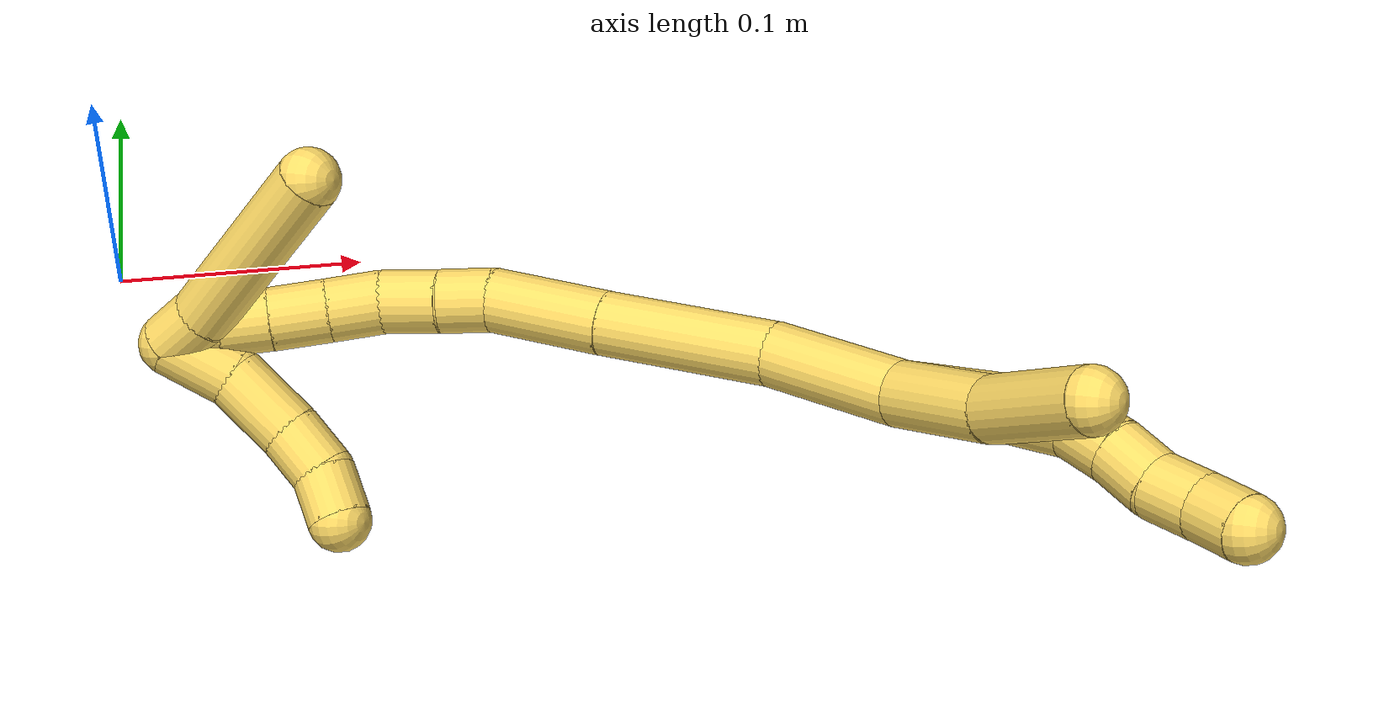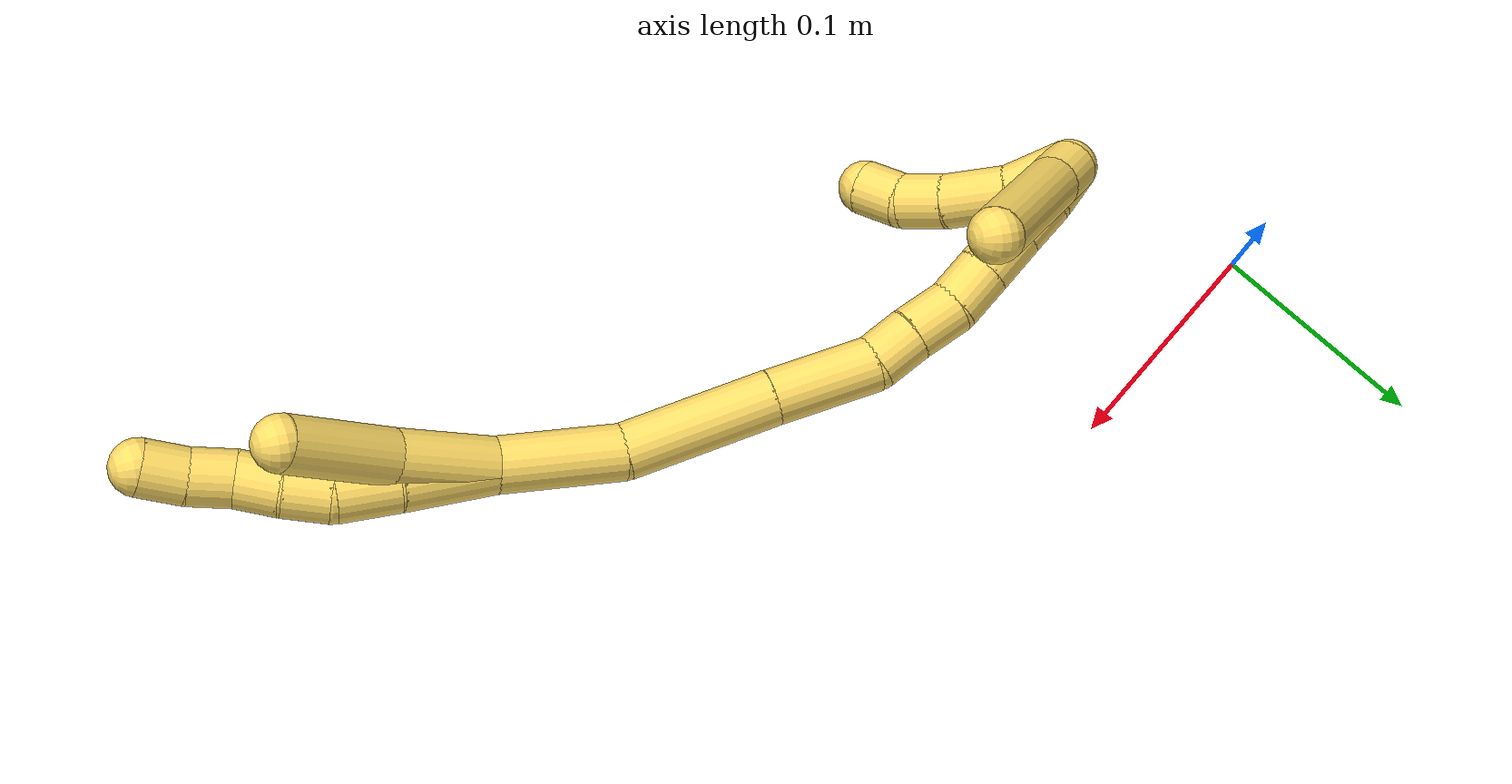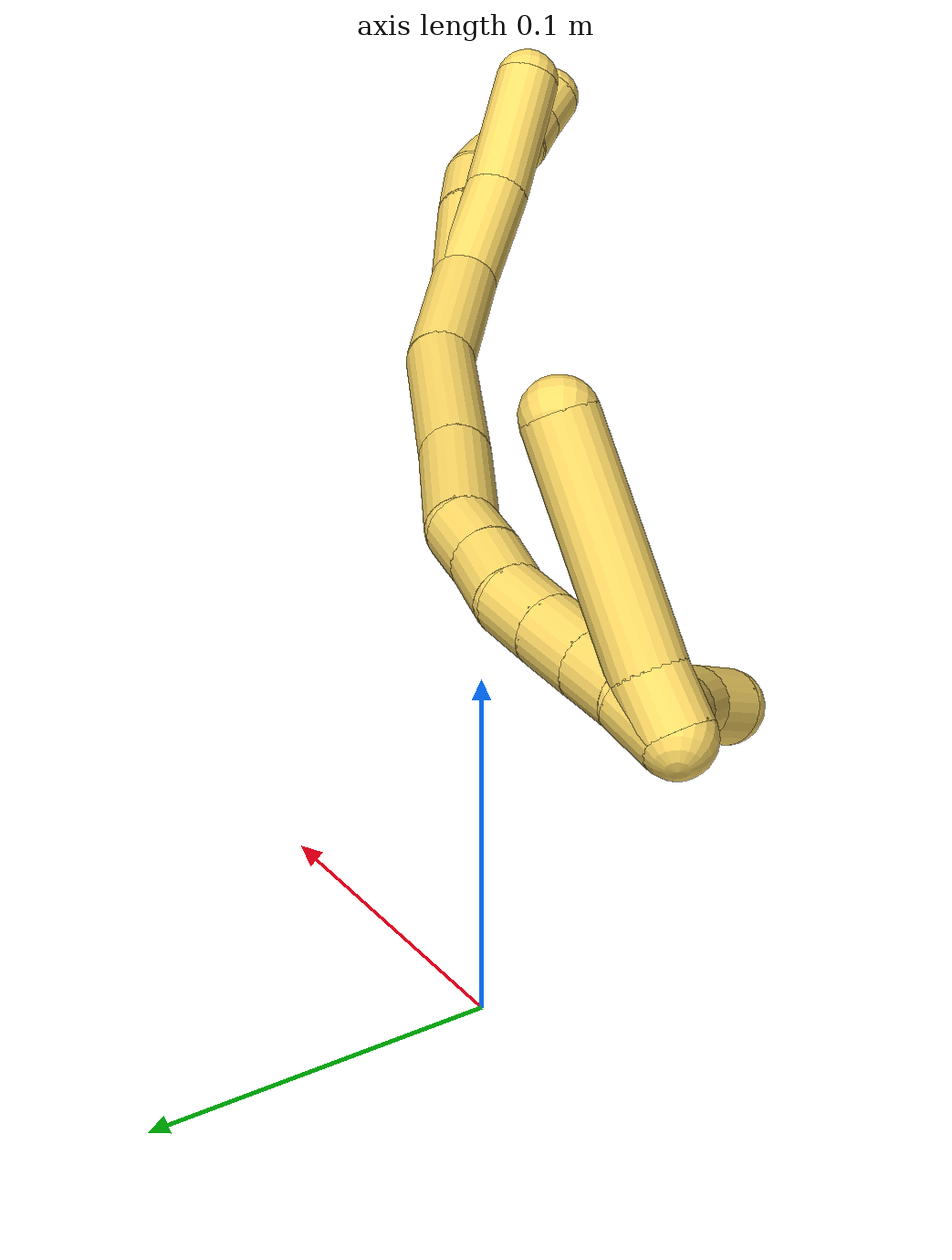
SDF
<sdf version="1.7">
 <world name="default">
  <model name="5">
   <static>0</static>
   <link name="5">
    <collision name="collision-cylinder-e_1_2_8">
     <pose>-0.000929 -0.001029 0.020965 0.049035 -0.044222 -0.001085</pose>
     <geometry><cylinder><radius>0.0125</radius><length>0.042021</length></cylinder></geometry>
     <surface>
      <friction><ode><mu>1.16</mu><mu2>1.16</mu2><slip1>0</slip1><slip2>0</slip2></ode></friction>
      <contact><ode><kp>1e+06</kp><kd>1</kd><max_vel>0</max_vel><min_depth>0.001</min_depth></ode></contact>
     </surface>
    </collision>
    <visual name="visual-cylinder-e_1_2_8">
     <pose>-0.000929 -0.001029 0.020965 0.049035 -0.044222 -0.001085</pose>
     <geometry><cylinder><radius>0.0125</radius><length>0.042021</length></cylinder></geometry>
     <material><ambient>1 0.858824 0.4 1</ambient></material>
    </visual>
    <collision name="collision-cylinder-e_2_8_9">
     <pose>-0.003402 -0.003721 0.055379 0.123021 -0.113488 -0.006997</pose>
     <geometry><cylinder><radius>0.0125</radius><length>0.02728</length></cylinder></geometry>
     <surface>
      <friction><ode><mu>1.16</mu><mu2>1.16</mu2><slip1>0</slip1><slip2>0</slip2></ode></friction>
      <contact><ode><kp>1e+06</kp><kd>1</kd><max_vel>0</max_vel><min_depth>0.001</min_depth></ode></contact>
     </surface>
    </collision>
    <visual name="visual-cylinder-e_2_8_9">
     <pose>-0.003402 -0.003721 0.055379 0.123021 -0.113488 -0.006997</pose>
     <geometry><cylinder><radius>0.0125</radius><length>0.02728</length></cylinder></geometry>
     <material><ambient>1 0.858824 0.4 1</ambient></material>
    </visual>
    <collision name="collision-cylinder-e_3_9_10">
     <pose>-0.009262 -0.006168 0.078114 0.084285 -0.433667 -0.018578</pose>
     <geometry><cylinder><radius>0.0125</radius><length>0.020538</length></cylinder></geometry>
     <surface>
      <friction><ode><mu>1.16</mu><mu2>1.16</mu2><slip1>0</slip1><slip2>0</slip2></ode></friction>
      <contact><ode><kp>1e+06</kp><kd>1</kd><max_vel>0</max_vel><min_depth>0.001</min_depth></ode></contact>
     </surface>
    </collision>
    <visual name="visual-cylinder-e_3_9_10">
     <pose>-0.009262 -0.006168 0.078114 0.084285 -0.433667 -0.018578</pose>
     <geometry><cylinder><radius>0.0125</radius><length>0.020538</length></cylinder></geometry>
     <material><ambient>1 0.858824 0.4 1</ambient></material>
    </visual>
    <collision name="collision-cylinder-e_4_10_11">
     <pose>-0.01881 -0.007998 0.095889 0.122559 -0.548981 -0.034552</pose>
     <geometry><cylinder><radius>0.0125</radius><length>0.020055</length></cylinder></geometry>
     <surface>
      <friction><ode><mu>1.16</mu><mu2>1.16</mu2><slip1>0</slip1><slip2>0</slip2></ode></friction>
      <contact><ode><kp>1e+06</kp><kd>1</kd><max_vel>0</max_vel><min_depth>0.001</min_depth></ode></contact>
     </surface>
    </collision>
    <visual name="visual-cylinder-e_4_10_11">
     <pose>-0.01881 -0.007998 0.095889 0.122559 -0.548981 -0.034552</pose>
     <geometry><cylinder><radius>0.0125</radius><length>0.020055</length></cylinder></geometry>
     <material><ambient>1 0.858824 0.4 1</ambient></material>
    </visual>
    <collision name="collision-cylinder-e_5_11_12">
     <pose>-0.027153 -0.009389 0.113903 0.036238 -0.315538 -0.005766</pose>
     <geometry><cylinder><radius>0.0125</radius><length>0.02005</length></cylinder></geometry>
     <surface>
      <friction><ode><mu>1.16</mu><mu2>1.16</mu2><slip1>0</slip1><slip2>0</slip2></ode></friction>
      <contact><ode><kp>1e+06</kp><kd>1</kd><max_vel>0</max_vel><min_depth>0.001</min_depth></ode></contact>
     </surface>
    </collision>
    <visual name="visual-cylinder-e_5_11_12">
     <pose>-0.027153 -0.009389 0.113903 0.036238 -0.315538 -0.005766</pose>
     <geometry><cylinder><radius>0.0125</radius><length>0.02005</length></cylinder></geometry>
     <material><ambient>1 0.858824 0.4 1</ambient></material>
    </visual>
    <collision name="collision-cylinder-e_6_12_6">
     <pose>-0.033913 -0.00851 0.132687 -0.131469 -0.372354 0.024798</pose>
     <geometry><cylinder><radius>0.0125</radius><length>0.020057</length></cylinder></geometry>
     <surface>
      <friction><ode><mu>1.16</mu><mu2>1.16</mu2><slip1>0</slip1><slip2>0</slip2></ode></friction>
      <contact><ode><kp>1e+06</kp><kd>1</kd><max_vel>0</max_vel><min_depth>0.001</min_depth></ode></contact>
     </surface>
    </collision>
    <visual name="visual-cylinder-e_6_12_6">
     <pose>-0.033913 -0.00851 0.132687 -0.131469 -0.372354 0.024798</pose>
     <geometry><cylinder><radius>0.0125</radius><length>0.020057</length></cylinder></geometry>
     <material><ambient>1 0.858824 0.4 1</ambient></material>
    </visual>
    <collision name="collision-cylinder-e_1_2_13">
     <pose>-0.004006 0.004856 0.022291 -0.214492 -0.173816 0.01876</pose>
     <geometry><cylinder><radius>0.0125</radius><length>0.046326</length></cylinder></geometry>
     <surface>
      <friction><ode><mu>1.16</mu><mu2>1.16</mu2><slip1>0</slip1><slip2>0</slip2></ode></friction>
      <contact><ode><kp>1e+06</kp><kd>1</kd><max_vel>0</max_vel><min_depth>0.001</min_depth></ode></contact>
     </surface>
    </collision>
    <visual name="visual-cylinder-e_1_2_13">
     <pose>-0.004006 0.004856 0.022291 -0.214492 -0.173816 0.01876</pose>
     <geometry><cylinder><radius>0.0125</radius><length>0.046326</length></cylinder></geometry>
     <material><ambient>1 0.858824 0.4 1</ambient></material>
    </visual>
    <collision name="collision-cylinder-e_2_13_5">
     <pose>-0.009744 0.020252 0.069202 -0.40451 -0.064605 0.013252</pose>
     <geometry><cylinder><radius>0.0125</radius><length>0.053674</length></cylinder></geometry>
     <surface>
      <friction><ode><mu>1.16</mu><mu2>1.16</mu2><slip1>0</slip1><slip2>0</slip2></ode></friction>
      <contact><ode><kp>1e+06</kp><kd>1</kd><max_vel>0</max_vel><min_depth>0.001</min_depth></ode></contact>
     </surface>
    </collision>
    <visual name="visual-cylinder-e_2_13_5">
     <pose>-0.009744 0.020252 0.069202 -0.40451 -0.064605 0.013252</pose>
     <geometry><cylinder><radius>0.0125</radius><length>0.053674</length></cylinder></geometry>
     <material><ambient>1 0.858824 0.4 1</ambient></material>
    </visual>
    <collision name="collision-cylinder-e_1_2_14">
     <pose>0.005003 0.003016 -0.027312 -3.0316 0.180085 -2.04645</pose>
     <geometry><cylinder><radius>0.0125</radius><length>0.05586</length></cylinder></geometry>
     <surface>
      <friction><ode><mu>1.16</mu><mu2>1.16</mu2><slip1>0</slip1><slip2>0</slip2></ode></friction>
      <contact><ode><kp>1e+06</kp><kd>1</kd><max_vel>0</max_vel><min_depth>0.001</min_depth></ode></contact>
     </surface>
    </collision>
    <visual name="visual-cylinder-e_1_2_14">
     <pose>0.005003 0.003016 -0.027312 -3.0316 0.180085 -2.04645</pose>
     <geometry><cylinder><radius>0.0125</radius><length>0.05586</length></cylinder></geometry>
     <material><ambient>1 0.858824 0.4 1</ambient></material>
    </visual>
    <collision name="collision-cylinder-e_2_14_15">
     <pose>0.009952 0.015754 -0.08748 -2.85392 -0.001561 0.010775</pose>
     <geometry><cylinder><radius>0.0125</radius><length>0.068528</length></cylinder></geometry>
     <surface>
      <friction><ode><mu>1.16</mu><mu2>1.16</mu2><slip1>0</slip1><slip2>0</slip2></ode></friction>
      <contact><ode><kp>1e+06</kp><kd>1</kd><max_vel>0</max_vel><min_depth>0.001</min_depth></ode></contact>
     </surface>
    </collision>
    <visual name="visual-cylinder-e_2_14_15">
     <pose>0.009952 0.015754 -0.08748 -2.85392 -0.001561 0.010775</pose>
     <geometry><cylinder><radius>0.0125</radius><length>0.068528</length></cylinder></geometry>
     <material><ambient>1 0.858824 0.4 1</ambient></material>
    </visual>
    <collision name="collision-cylinder-e_3_15_16">
     <pose>0.010515 0.032013 -0.143097 -2.86188 0.026045 -0.184495</pose>
     <geometry><cylinder><radius>0.0125</radius><length>0.047378</length></cylinder></geometry>
     <surface>
      <friction><ode><mu>1.16</mu><mu2>1.16</mu2><slip1>0</slip1><slip2>0</slip2></ode></friction>
      <contact><ode><kp>1e+06</kp><kd>1</kd><max_vel>0</max_vel><min_depth>0.001</min_depth></ode></contact>
     </surface>
    </collision>
    <visual name="visual-cylinder-e_3_15_16">
     <pose>0.010515 0.032013 -0.143097 -2.86188 0.026045 -0.184495</pose>
     <geometry><cylinder><radius>0.0125</radius><length>0.047378</length></cylinder></geometry>
     <material><ambient>1 0.858824 0.4 1</ambient></material>
    </visual>
    <collision name="collision-cylinder-e_4_16_17">
     <pose>0.008278 0.042654 -0.174985 -2.71916 -0.277794 1.15555</pose>
     <geometry><cylinder><radius>0.0125</radius><length>0.020814</length></cylinder></geometry>
     <surface>
      <friction><ode><mu>1.16</mu><mu2>1.16</mu2><slip1>0</slip1><slip2>0</slip2></ode></friction>
      <contact><ode><kp>1e+06</kp><kd>1</kd><max_vel>0</max_vel><min_depth>0.001</min_depth></ode></contact>
     </surface>
    </collision>
    <visual name="visual-cylinder-e_4_16_17">
     <pose>0.008278 0.042654 -0.174985 -2.71916 -0.277794 1.15555</pose>
     <geometry><cylinder><radius>0.0125</radius><length>0.020814</length></cylinder></geometry>
     <material><ambient>1 0.858824 0.4 1</ambient></material>
    </visual>
    <collision name="collision-cylinder-e_5_17_18">
     <pose>0.002844 0.050735 -0.194469 -2.77485 -0.228491 1.10814</pose>
     <geometry><cylinder><radius>0.0125</radius><length>0.02278</length></cylinder></geometry>
     <surface>
      <friction><ode><mu>1.16</mu><mu2>1.16</mu2><slip1>0</slip1><slip2>0</slip2></ode></friction>
      <contact><ode><kp>1e+06</kp><kd>1</kd><max_vel>0</max_vel><min_depth>0.001</min_depth></ode></contact>
     </surface>
    </collision>
    <visual name="visual-cylinder-e_5_17_18">
     <pose>0.002844 0.050735 -0.194469 -2.77485 -0.228491 1.10814</pose>
     <geometry><cylinder><radius>0.0125</radius><length>0.02278</length></cylinder></geometry>
     <material><ambient>1 0.858824 0.4 1</ambient></material>
    </visual>
    <collision name="collision-cylinder-e_6_18_19">
     <pose>-0.004319 0.059246 -0.21324 -2.64746 -0.447185 1.46737</pose>
     <geometry><cylinder><radius>0.0125</radius><length>0.021201</length></cylinder></geometry>
     <surface>
      <friction><ode><mu>1.16</mu><mu2>1.16</mu2><slip1>0</slip1><slip2>0</slip2></ode></friction>
      <contact><ode><kp>1e+06</kp><kd>1</kd><max_vel>0</max_vel><min_depth>0.001</min_depth></ode></contact>
     </surface>
    </collision>
    <visual name="visual-cylinder-e_6_18_19">
     <pose>-0.004319 0.059246 -0.21324 -2.64746 -0.447185 1.46737</pose>
     <geometry><cylinder><radius>0.0125</radius><length>0.021201</length></cylinder></geometry>
     <material><ambient>1 0.858824 0.4 1</ambient></material>
    </visual>
    <collision name="collision-cylinder-e_7_19_20">
     <pose>-0.01383 0.068867 -0.230614 -2.62517 -0.446005 1.41897</pose>
     <geometry><cylinder><radius>0.0125</radius><length>0.022841</length></cylinder></geometry>
     <surface>
      <friction><ode><mu>1.16</mu><mu2>1.16</mu2><slip1>0</slip1><slip2>0</slip2></ode></friction>
      <contact><ode><kp>1e+06</kp><kd>1</kd><max_vel>0</max_vel><min_depth>0.001</min_depth></ode></contact>
     </surface>
    </collision>
    <visual name="visual-cylinder-e_7_19_20">
     <pose>-0.01383 0.068867 -0.230614 -2.62517 -0.446005 1.41897</pose>
     <geometry><cylinder><radius>0.0125</radius><length>0.022841</length></cylinder></geometry>
     <material><ambient>1 0.858824 0.4 1</ambient></material>
    </visual>
    <collision name="collision-cylinder-e_8_20_21">
     <pose>-0.022899 0.078616 -0.247544 -2.61235 -0.421736 1.33714</pose>
     <geometry><cylinder><radius>0.0125</radius><length>0.02024</length></cylinder></geometry>
     <surface>
      <friction><ode><mu>1.16</mu><mu2>1.16</mu2><slip1>0</slip1><slip2>0</slip2></ode></friction>
      <contact><ode><kp>1e+06</kp><kd>1</kd><max_vel>0</max_vel><min_depth>0.001</min_depth></ode></contact>
     </surface>
    </collision>
    <visual name="visual-cylinder-e_8_20_21">
     <pose>-0.022899 0.078616 -0.247544 -2.61235 -0.421736 1.33714</pose>
     <geometry><cylinder><radius>0.0125</radius><length>0.02024</length></cylinder></geometry>
     <material><ambient>1 0.858824 0.4 1</ambient></material>
    </visual>
    <collision name="collision-cylinder-e_9_21_1">
     <pose>-0.032715 0.086084 -0.263487 -2.80313 -0.591182 2.11892</pose>
     <geometry><cylinder><radius>0.0125</radius><length>0.020359</length></cylinder></geometry>
     <surface>
      <friction><ode><mu>1.16</mu><mu2>1.16</mu2><slip1>0</slip1><slip2>0</slip2></ode></friction>
      <contact><ode><kp>1e+06</kp><kd>1</kd><max_vel>0</max_vel><min_depth>0.001</min_depth></ode></contact>
     </surface>
    </collision>
    <visual name="visual-cylinder-e_9_21_1">
     <pose>-0.032715 0.086084 -0.263487 -2.80313 -0.591182 2.11892</pose>
     <geometry><cylinder><radius>0.0125</radius><length>0.020359</length></cylinder></geometry>
     <material><ambient>1 0.858824 0.4 1</ambient></material>
    </visual>
    <collision name="collision-cylinder-e_1_1_22">
     <pose>-0.033023 0.091286 -0.263329 -0.286523 0.564396 -0.083598</pose>
     <geometry><cylinder><radius>0.0125</radius><length>0.020063</length></cylinder></geometry>
     <surface>
      <friction><ode><mu>1.16</mu><mu2>1.16</mu2><slip1>0</slip1><slip2>0</slip2></ode></friction>
      <contact><ode><kp>1e+06</kp><kd>1</kd><max_vel>0</max_vel><min_depth>0.001</min_depth></ode></contact>
     </surface>
    </collision>
    <visual name="visual-cylinder-e_1_1_22">
     <pose>-0.033023 0.091286 -0.263329 -0.286523 0.564396 -0.083598</pose>
     <geometry><cylinder><radius>0.0125</radius><length>0.020063</length></cylinder></geometry>
     <material><ambient>1 0.858824 0.4 1</ambient></material>
    </visual>
    <collision name="collision-cylinder-e_2_22_4">
     <pose>-0.006189 0.10959 -0.225474 -0.491407 0.567001 -0.145864</pose>
     <geometry><cylinder><radius>0.0125</radius><length>0.079937</length></cylinder></geometry>
     <surface>
      <friction><ode><mu>1.16</mu><mu2>1.16</mu2><slip1>0</slip1><slip2>0</slip2></ode></friction>
      <contact><ode><kp>1e+06</kp><kd>1</kd><max_vel>0</max_vel><min_depth>0.001</min_depth></ode></contact>
     </surface>
    </collision>
    <visual name="visual-cylinder-e_2_22_4">
     <pose>-0.006189 0.10959 -0.225474 -0.491407 0.567001 -0.145864</pose>
     <geometry><cylinder><radius>0.0125</radius><length>0.079937</length></cylinder></geometry>
     <material><ambient>1 0.858824 0.4 1</ambient></material>
    </visual>
    <collision name="collision-cylinder-e_1_1_23">
     <pose>-0.040662 0.079877 -0.260795 0.701705 -0.161431 -0.059194</pose>
     <geometry><cylinder><radius>0.0125</radius><length>0.028294</length></cylinder></geometry>
     <surface>
      <friction><ode><mu>1.16</mu><mu2>1.16</mu2><slip1>0</slip1><slip2>0</slip2></ode></friction>
      <contact><ode><kp>1e+06</kp><kd>1</kd><max_vel>0</max_vel><min_depth>0.001</min_depth></ode></contact>
     </surface>
    </collision>
    <visual name="visual-cylinder-e_1_1_23">
     <pose>-0.040662 0.079877 -0.260795 0.701705 -0.161431 -0.059194</pose>
     <geometry><cylinder><radius>0.0125</radius><length>0.028294</length></cylinder></geometry>
     <material><ambient>1 0.858824 0.4 1</ambient></material>
    </visual>
    <collision name="collision-cylinder-e_2_23_24">
     <pose>-0.049759 0.06201 -0.239621 0.700051 -0.460834 -0.170856</pose>
     <geometry><cylinder><radius>0.0125</radius><length>0.030687</length></cylinder></geometry>
     <surface>
      <friction><ode><mu>1.16</mu><mu2>1.16</mu2><slip1>0</slip1><slip2>0</slip2></ode></friction>
      <contact><ode><kp>1e+06</kp><kd>1</kd><max_vel>0</max_vel><min_depth>0.001</min_depth></ode></contact>
     </surface>
    </collision>
    <visual name="visual-cylinder-e_2_23_24">
     <pose>-0.049759 0.06201 -0.239621 0.700051 -0.460834 -0.170856</pose>
     <geometry><cylinder><radius>0.0125</radius><length>0.030687</length></cylinder></geometry>
     <material><ambient>1 0.858824 0.4 1</ambient></material>
    </visual>
    <collision name="collision-cylinder-e_3_24_25">
     <pose>-0.062354 0.047992 -0.222048 0.631382 -0.583118 -0.195417</pose>
     <geometry><cylinder><radius>0.0125</radius><length>0.020961</length></cylinder></geometry>
     <surface>
      <friction><ode><mu>1.16</mu><mu2>1.16</mu2><slip1>0</slip1><slip2>0</slip2></ode></friction>
      <contact><ode><kp>1e+06</kp><kd>1</kd><max_vel>0</max_vel><min_depth>0.001</min_depth></ode></contact>
     </surface>
    </collision>
    <visual name="visual-cylinder-e_3_24_25">
     <pose>-0.062354 0.047992 -0.222048 0.631382 -0.583118 -0.195417</pose>
     <geometry><cylinder><radius>0.0125</radius><length>0.020961</length></cylinder></geometry>
     <material><ambient>1 0.858824 0.4 1</ambient></material>
    </visual>
    <collision name="collision-cylinder-e_4_25_3">
     <pose>-0.076123 0.03921 -0.210136 0.640964 -0.923228 -0.327285</pose>
     <geometry><cylinder><radius>0.0125</radius><length>0.020058</length></cylinder></geometry>
     <surface>
      <friction><ode><mu>1.16</mu><mu2>1.16</mu2><slip1>0</slip1><slip2>0</slip2></ode></friction>
      <contact><ode><kp>1e+06</kp><kd>1</kd><max_vel>0</max_vel><min_depth>0.001</min_depth></ode></contact>
     </surface>
    </collision>
    <visual name="visual-cylinder-e_4_25_3">
     <pose>-0.076123 0.03921 -0.210136 0.640964 -0.923228 -0.327285</pose>
     <geometry><cylinder><radius>0.0125</radius><length>0.020058</length></cylinder></geometry>
     <material><ambient>1 0.858824 0.4 1</ambient></material>
    </visual>
    <collision name="collision-sphere-3">
     <pose>-0.084122 0.035593 -0.205287 0 -0 0</pose>
     <geometry><sphere><radius>0.0125</radius></sphere></geometry>
     <surface>
      <friction><ode><mu>1.16</mu><mu2>1.16</mu2><slip1>0</slip1><slip2>0</slip2></ode></friction>
      <contact><ode><kp>1e+06</kp><kd>1</kd><max_vel>0</max_vel><min_depth>0.001</min_depth></ode></contact>
     </surface>
    </collision>
    <visual name="visual-sphere-3">
     <pose>-0.084122 0.035593 -0.205287 0 -0 0</pose>
     <geometry><sphere><radius>0.0125</radius></sphere></geometry>
     <material><ambient>1 0.858824 0.4 1</ambient></material>
    </visual>
    <collision name="collision-sphere-25">
     <pose>-0.068124 0.042828 -0.214986 0 -0 0</pose>
     <geometry><sphere><radius>0.0125</radius></sphere></geometry>
     <surface>
      <friction><ode><mu>1.16</mu><mu2>1.16</mu2><slip1>0</slip1><slip2>0</slip2></ode></friction>
      <contact><ode><kp>1e+06</kp><kd>1</kd><max_vel>0</max_vel><min_depth>0.001</min_depth></ode></contact>
     </surface>
    </collision>
    <visual name="visual-sphere-25">
     <pose>-0.068124 0.042828 -0.214986 0 -0 0</pose>
     <geometry><sphere><radius>0.0125</radius></sphere></geometry>
     <material><ambient>1 0.858824 0.4 1</ambient></material>
    </visual>
    <collision name="collision-sphere-24">
     <pose>-0.056583 0.053156 -0.22911 0 -0 0</pose>
     <geometry><sphere><radius>0.0125</radius></sphere></geometry>
     <surface>
      <friction><ode><mu>1.16</mu><mu2>1.16</mu2><slip1>0</slip1><slip2>0</slip2></ode></friction>
      <contact><ode><kp>1e+06</kp><kd>1</kd><max_vel>0</max_vel><min_depth>0.001</min_depth></ode></contact>
     </surface>
    </collision>
    <visual name="visual-sphere-24">
     <pose>-0.056583 0.053156 -0.22911 0 -0 0</pose>
     <geometry><sphere><radius>0.0125</radius></sphere></geometry>
     <material><ambient>1 0.858824 0.4 1</ambient></material>
    </visual>
    <collision name="collision-sphere-23">
     <pose>-0.042936 0.070864 -0.250131 0 -0 0</pose>
     <geometry><sphere><radius>0.0125</radius></sphere></geometry>
     <surface>
      <friction><ode><mu>1.16</mu><mu2>1.16</mu2><slip1>0</slip1><slip2>0</slip2></ode></friction>
      <contact><ode><kp>1e+06</kp><kd>1</kd><max_vel>0</max_vel><min_depth>0.001</min_depth></ode></contact>
     </surface>
    </collision>
    <visual name="visual-sphere-23">
     <pose>-0.042936 0.070864 -0.250131 0 -0 0</pose>
     <geometry><sphere><radius>0.0125</radius></sphere></geometry>
     <material><ambient>1 0.858824 0.4 1</ambient></material>
    </visual>
    <collision name="collision-sphere-4">
     <pose>0.015278 0.125499 -0.19575 0 -0 0</pose>
     <geometry><sphere><radius>0.0125</radius></sphere></geometry>
     <surface>
      <friction><ode><mu>1.16</mu><mu2>1.16</mu2><slip1>0</slip1><slip2>0</slip2></ode></friction>
      <contact><ode><kp>1e+06</kp><kd>1</kd><max_vel>0</max_vel><min_depth>0.001</min_depth></ode></contact>
     </surface>
    </collision>
    <visual name="visual-sphere-4">
     <pose>0.015278 0.125499 -0.19575 0 -0 0</pose>
     <geometry><sphere><radius>0.0125</radius></sphere></geometry>
     <material><ambient>1 0.858824 0.4 1</ambient></material>
    </visual>
    <collision name="collision-sphere-22">
     <pose>-0.027657 0.093681 -0.255199 0 -0 0</pose>
     <geometry><sphere><radius>0.0125</radius></sphere></geometry>
     <surface>
      <friction><ode><mu>1.16</mu><mu2>1.16</mu2><slip1>0</slip1><slip2>0</slip2></ode></friction>
      <contact><ode><kp>1e+06</kp><kd>1</kd><max_vel>0</max_vel><min_depth>0.001</min_depth></ode></contact>
     </surface>
    </collision>
    <visual name="visual-sphere-22">
     <pose>-0.027657 0.093681 -0.255199 0 -0 0</pose>
     <geometry><sphere><radius>0.0125</radius></sphere></geometry>
     <material><ambient>1 0.858824 0.4 1</ambient></material>
    </visual>
    <collision name="collision-sphere-1">
     <pose>-0.038388 0.088891 -0.271459 0 -0 0</pose>
     <geometry><sphere><radius>0.0125</radius></sphere></geometry>
     <surface>
      <friction><ode><mu>1.16</mu><mu2>1.16</mu2><slip1>0</slip1><slip2>0</slip2></ode></friction>
      <contact><ode><kp>1e+06</kp><kd>1</kd><max_vel>0</max_vel><min_depth>0.001</min_depth></ode></contact>
     </surface>
    </collision>
    <visual name="visual-sphere-1">
     <pose>-0.038388 0.088891 -0.271459 0 -0 0</pose>
     <geometry><sphere><radius>0.0125</radius></sphere></geometry>
     <material><ambient>1 0.858824 0.4 1</ambient></material>
    </visual>
    <collision name="collision-sphere-21">
     <pose>-0.027042 0.083278 -0.255515 0 -0 0</pose>
     <geometry><sphere><radius>0.0125</radius></sphere></geometry>
     <surface>
      <friction><ode><mu>1.16</mu><mu2>1.16</mu2><slip1>0</slip1><slip2>0</slip2></ode></friction>
      <contact><ode><kp>1e+06</kp><kd>1</kd><max_vel>0</max_vel><min_depth>0.001</min_depth></ode></contact>
     </surface>
    </collision>
    <visual name="visual-sphere-21">
     <pose>-0.027042 0.083278 -0.255515 0 -0 0</pose>
     <geometry><sphere><radius>0.0125</radius></sphere></geometry>
     <material><ambient>1 0.858824 0.4 1</ambient></material>
    </visual>
    <collision name="collision-sphere-12">
     <pose>-0.030264 -0.009735 0.123426 0 -0 0</pose>
     <geometry><sphere><radius>0.0125</radius></sphere></geometry>
     <surface>
      <friction><ode><mu>1.16</mu><mu2>1.16</mu2><slip1>0</slip1><slip2>0</slip2></ode></friction>
      <contact><ode><kp>1e+06</kp><kd>1</kd><max_vel>0</max_vel><min_depth>0.001</min_depth></ode></contact>
     </surface>
    </collision>
    <visual name="visual-sphere-12">
     <pose>-0.030264 -0.009735 0.123426 0 -0 0</pose>
     <geometry><sphere><radius>0.0125</radius></sphere></geometry>
     <material><ambient>1 0.858824 0.4 1</ambient></material>
    </visual>
    <collision name="collision-sphere-11">
     <pose>-0.024042 -0.009044 0.104379 0 -0 0</pose>
     <geometry><sphere><radius>0.0125</radius></sphere></geometry>
     <surface>
      <friction><ode><mu>1.16</mu><mu2>1.16</mu2><slip1>0</slip1><slip2>0</slip2></ode></friction>
      <contact><ode><kp>1e+06</kp><kd>1</kd><max_vel>0</max_vel><min_depth>0.001</min_depth></ode></contact>
     </surface>
    </collision>
    <visual name="visual-sphere-11">
     <pose>-0.024042 -0.009044 0.104379 0 -0 0</pose>
     <geometry><sphere><radius>0.0125</radius></sphere></geometry>
     <material><ambient>1 0.858824 0.4 1</ambient></material>
    </visual>
    <collision name="collision-sphere-10">
     <pose>-0.013577 -0.006953 0.087399 0 -0 0</pose>
     <geometry><sphere><radius>0.0125</radius></sphere></geometry>
     <surface>
      <friction><ode><mu>1.16</mu><mu2>1.16</mu2><slip1>0</slip1><slip2>0</slip2></ode></friction>
      <contact><ode><kp>1e+06</kp><kd>1</kd><max_vel>0</max_vel><min_depth>0.001</min_depth></ode></contact>
     </surface>
    </collision>
    <visual name="visual-sphere-10">
     <pose>-0.013577 -0.006953 0.087399 0 -0 0</pose>
     <geometry><sphere><radius>0.0125</radius></sphere></geometry>
     <material><ambient>1 0.858824 0.4 1</ambient></material>
    </visual>
    <collision name="collision-sphere-9">
     <pose>-0.004947 -0.005384 0.068828 0 -0 0</pose>
     <geometry><sphere><radius>0.0125</radius></sphere></geometry>
     <surface>
      <friction><ode><mu>1.16</mu><mu2>1.16</mu2><slip1>0</slip1><slip2>0</slip2></ode></friction>
      <contact><ode><kp>1e+06</kp><kd>1</kd><max_vel>0</max_vel><min_depth>0.001</min_depth></ode></contact>
     </surface>
    </collision>
    <visual name="visual-sphere-9">
     <pose>-0.004947 -0.005384 0.068828 0 -0 0</pose>
     <geometry><sphere><radius>0.0125</radius></sphere></geometry>
     <material><ambient>1 0.858824 0.4 1</ambient></material>
    </visual>
    <collision name="collision-sphere-2">
     <geometry><sphere><radius>0.0125</radius></sphere></geometry>
     <surface>
      <friction><ode><mu>1.16</mu><mu2>1.16</mu2><slip1>0</slip1><slip2>0</slip2></ode></friction>
      <contact><ode><kp>1e+06</kp><kd>1</kd><max_vel>0</max_vel><min_depth>0.001</min_depth></ode></contact>
     </surface>
    </collision>
    <visual name="visual-sphere-2">
     <geometry><sphere><radius>0.0125</radius></sphere></geometry>
     <material><ambient>1 0.858824 0.4 1</ambient></material>
    </visual>
    <collision name="collision-sphere-19">
     <pose>-0.008903 0.06378 -0.221655 0 -0 0</pose>
     <geometry><sphere><radius>0.0125</radius></sphere></geometry>
     <surface>
      <friction><ode><mu>1.16</mu><mu2>1.16</mu2><slip1>0</slip1><slip2>0</slip2></ode></friction>
      <contact><ode><kp>1e+06</kp><kd>1</kd><max_vel>0</max_vel><min_depth>0.001</min_depth></ode></contact>
     </surface>
    </collision>
    <visual name="visual-sphere-19">
     <pose>-0.008903 0.06378 -0.221655 0 -0 0</pose>
     <geometry><sphere><radius>0.0125</radius></sphere></geometry>
     <material><ambient>1 0.858824 0.4 1</ambient></material>
    </visual>
    <collision name="collision-sphere-8">
     <pose>-0.001858 -0.002058 0.041929 0 -0 0</pose>
     <geometry><sphere><radius>0.0125</radius></sphere></geometry>
     <surface>
      <friction><ode><mu>1.16</mu><mu2>1.16</mu2><slip1>0</slip1><slip2>0</slip2></ode></friction>
      <contact><ode><kp>1e+06</kp><kd>1</kd><max_vel>0</max_vel><min_depth>0.001</min_depth></ode></contact>
     </surface>
    </collision>
    <visual name="visual-sphere-8">
     <pose>-0.001858 -0.002058 0.041929 0 -0 0</pose>
     <geometry><sphere><radius>0.0125</radius></sphere></geometry>
     <material><ambient>1 0.858824 0.4 1</ambient></material>
    </visual>
    <collision name="collision-sphere-6">
     <pose>-0.037561 -0.007286 0.141947 0 -0 0</pose>
     <geometry><sphere><radius>0.0125</radius></sphere></geometry>
     <surface>
      <friction><ode><mu>1.16</mu><mu2>1.16</mu2><slip1>0</slip1><slip2>0</slip2></ode></friction>
      <contact><ode><kp>1e+06</kp><kd>1</kd><max_vel>0</max_vel><min_depth>0.001</min_depth></ode></contact>
     </surface>
    </collision>
    <visual name="visual-sphere-6">
     <pose>-0.037561 -0.007286 0.141947 0 -0 0</pose>
     <geometry><sphere><radius>0.0125</radius></sphere></geometry>
     <material><ambient>1 0.858824 0.4 1</ambient></material>
    </visual>
    <collision name="collision-sphere-13">
     <pose>-0.008012 0.009712 0.044583 0 -0 0</pose>
     <geometry><sphere><radius>0.0125</radius></sphere></geometry>
     <surface>
      <friction><ode><mu>1.16</mu><mu2>1.16</mu2><slip1>0</slip1><slip2>0</slip2></ode></friction>
      <contact><ode><kp>1e+06</kp><kd>1</kd><max_vel>0</max_vel><min_depth>0.001</min_depth></ode></contact>
     </surface>
    </collision>
    <visual name="visual-sphere-13">
     <pose>-0.008012 0.009712 0.044583 0 -0 0</pose>
     <geometry><sphere><radius>0.0125</radius></sphere></geometry>
     <material><ambient>1 0.858824 0.4 1</ambient></material>
    </visual>
    <collision name="collision-sphere-5">
     <pose>-0.011477 0.030792 0.093822 0 -0 0</pose>
     <geometry><sphere><radius>0.0125</radius></sphere></geometry>
     <surface>
      <friction><ode><mu>1.16</mu><mu2>1.16</mu2><slip1>0</slip1><slip2>0</slip2></ode></friction>
      <contact><ode><kp>1e+06</kp><kd>1</kd><max_vel>0</max_vel><min_depth>0.001</min_depth></ode></contact>
     </surface>
    </collision>
    <visual name="visual-sphere-5">
     <pose>-0.011477 0.030792 0.093822 0 -0 0</pose>
     <geometry><sphere><radius>0.0125</radius></sphere></geometry>
     <material><ambient>1 0.858824 0.4 1</ambient></material>
    </visual>
    <collision name="collision-sphere-14">
     <pose>0.010005 0.006033 -0.054624 0 -0 0</pose>
     <geometry><sphere><radius>0.0125</radius></sphere></geometry>
     <surface>
      <friction><ode><mu>1.16</mu><mu2>1.16</mu2><slip1>0</slip1><slip2>0</slip2></ode></friction>
      <contact><ode><kp>1e+06</kp><kd>1</kd><max_vel>0</max_vel><min_depth>0.001</min_depth></ode></contact>
     </surface>
    </collision>
    <visual name="visual-sphere-14">
     <pose>0.010005 0.006033 -0.054624 0 -0 0</pose>
     <geometry><sphere><radius>0.0125</radius></sphere></geometry>
     <material><ambient>1 0.858824 0.4 1</ambient></material>
    </visual>
    <collision name="collision-sphere-15">
     <pose>0.009898 0.025475 -0.120336 0 -0 0</pose>
     <geometry><sphere><radius>0.0125</radius></sphere></geometry>
     <surface>
      <friction><ode><mu>1.16</mu><mu2>1.16</mu2><slip1>0</slip1><slip2>0</slip2></ode></friction>
      <contact><ode><kp>1e+06</kp><kd>1</kd><max_vel>0</max_vel><min_depth>0.001</min_depth></ode></contact>
     </surface>
    </collision>
    <visual name="visual-sphere-15">
     <pose>0.009898 0.025475 -0.120336 0 -0 0</pose>
     <geometry><sphere><radius>0.0125</radius></sphere></geometry>
     <material><ambient>1 0.858824 0.4 1</ambient></material>
    </visual>
    <collision name="collision-sphere-16">
     <pose>0.011132 0.038551 -0.165857 0 -0 0</pose>
     <geometry><sphere><radius>0.0125</radius></sphere></geometry>
     <surface>
      <friction><ode><mu>1.16</mu><mu2>1.16</mu2><slip1>0</slip1><slip2>0</slip2></ode></friction>
      <contact><ode><kp>1e+06</kp><kd>1</kd><max_vel>0</max_vel><min_depth>0.001</min_depth></ode></contact>
     </surface>
    </collision>
    <visual name="visual-sphere-16">
     <pose>0.011132 0.038551 -0.165857 0 -0 0</pose>
     <geometry><sphere><radius>0.0125</radius></sphere></geometry>
     <material><ambient>1 0.858824 0.4 1</ambient></material>
    </visual>
    <collision name="collision-sphere-17">
     <pose>0.005424 0.046757 -0.184113 0 -0 0</pose>
     <geometry><sphere><radius>0.0125</radius></sphere></geometry>
     <surface>
      <friction><ode><mu>1.16</mu><mu2>1.16</mu2><slip1>0</slip1><slip2>0</slip2></ode></friction>
      <contact><ode><kp>1e+06</kp><kd>1</kd><max_vel>0</max_vel><min_depth>0.001</min_depth></ode></contact>
     </surface>
    </collision>
    <visual name="visual-sphere-17">
     <pose>0.005424 0.046757 -0.184113 0 -0 0</pose>
     <geometry><sphere><radius>0.0125</radius></sphere></geometry>
     <material><ambient>1 0.858824 0.4 1</ambient></material>
    </visual>
    <collision name="collision-sphere-18">
     <pose>0.000264 0.054713 -0.204825 0 -0 0</pose>
     <geometry><sphere><radius>0.0125</radius></sphere></geometry>
     <surface>
      <friction><ode><mu>1.16</mu><mu2>1.16</mu2><slip1>0</slip1><slip2>0</slip2></ode></friction>
      <contact><ode><kp>1e+06</kp><kd>1</kd><max_vel>0</max_vel><min_depth>0.001</min_depth></ode></contact>
     </surface>
    </collision>
    <visual name="visual-sphere-18">
     <pose>0.000264 0.054713 -0.204825 0 -0 0</pose>
     <geometry><sphere><radius>0.0125</radius></sphere></geometry>
     <material><ambient>1 0.858824 0.4 1</ambient></material>
    </visual>
    <collision name="collision-sphere-20">
     <pose>-0.018756 0.073955 -0.239574 0 -0 0</pose>
     <geometry><sphere><radius>0.0125</radius></sphere></geometry>
     <surface>
      <friction><ode><mu>1.16</mu><mu2>1.16</mu2><slip1>0</slip1><slip2>0</slip2></ode></friction>
      <contact><ode><kp>1e+06</kp><kd>1</kd><max_vel>0</max_vel><min_depth>0.001</min_depth></ode></contact>
     </surface>
    </collision>
    <visual name="visual-sphere-20">
     <pose>-0.018756 0.073955 -0.239574 0 -0 0</pose>
     <geometry><sphere><radius>0.0125</radius></sphere></geometry>
     <material><ambient>1 0.858824 0.4 1</ambient></material>
    </visual>
    <inertial>
     <pose>-0.012189 0.037399 -0.098443 0 -0 0</pose>
     <mass>0.75</mass>
     <inertia>
      <ixx>0.000102</ixx>
      <ixy>0</ixy>
      <ixz>0</ixz>
      <iyy>5.4e-05</iyy>
      <iyz>0</iyz>
      <izz>-4.4e-05</izz>
     </inertia>
    </inertial>
   </link>
   <pose>0.291585 -0.180526 0.092329 1.13751 -0.372978 1.13665</pose>
  </model>
 </world>
</sdf>
